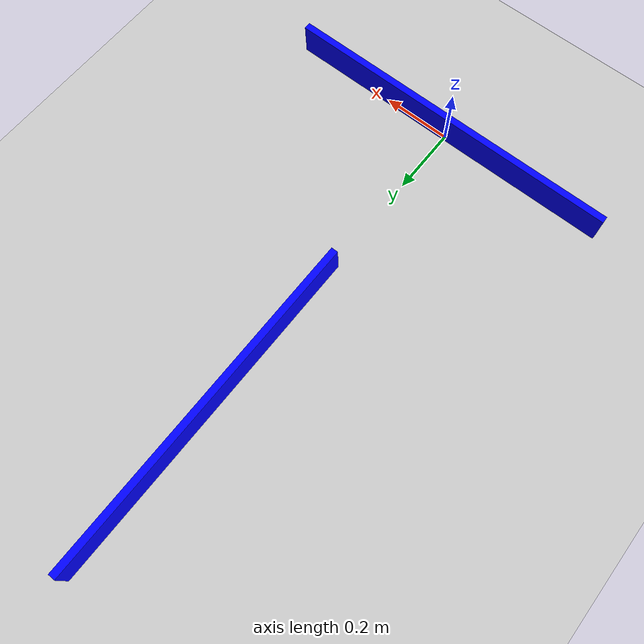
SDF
<?xml version="1.0" ?>
<sdf version="1.6">
  <world name="micromouse_maze">
    <include>
      <uri>model://ground_plane</uri>
    </include>

    <include>
      <uri>model://sun</uri>
    </include>

    <!-- Walls -->
    <model name="wall1">
      <pose>0 0 0.05 0 0 0</pose>
      <link name="link">
        <collision name="collision">
          <geometry>
            <box>
              <size>1 0.02 0.1</size>
            </box>
          </geometry>
        </collision>
        <visual name="visual">
          <geometry>
            <box>
              <size>1 0.02 0.1</size>
            </box>
          </geometry>
          <material>
            <ambient>0 0 1 1</ambient>
          </material>
        </visual>
      </link>
      <static>true</static>
    </model>

    <model name="wall2">
      <pose>0 1 0.05 0 0 1.57</pose>
      <link name="link">
        <collision name="collision">
          <geometry>
            <box>
              <size>1 0.02 0.1</size>
            </box>
          </geometry>
        </collision>
        <visual name="visual">
          <geometry>
            <box>
              <size>1 0.02 0.1</size>
            </box>
          </geometry>
          <material>
            <ambient>0 0 1 1</ambient>
          </material>
        </visual>
      </link>
      <static>true</static>
    </model>

    <!-- Add more walls as needed for the maze -->
  </world>
</sdf>
